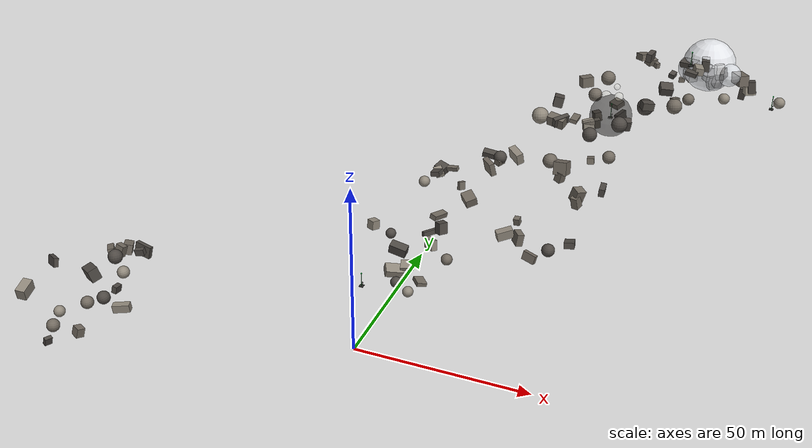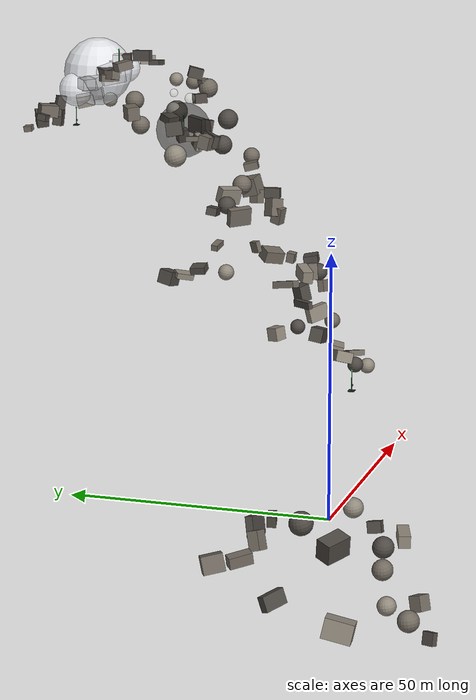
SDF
<sdf version="1.10">
 <world name="hiking_lora_world">
  <model name="node_ridge_mid">
   <static>true</static>
   <pose>4 -3 0 0 0 0</pose>
   <link name="tower">
    <visual name="foundation">
     <pose>0 0 23.7151 0 0 0</pose>
     <geometry><box><size>1.15 1.15 0.16</size></box></geometry>
     <material>
      <ambient>0.11199999999999999 0.11199999999999999 0.105 1</ambient>
      <diffuse>0.16 0.16 0.15 1</diffuse>
     </material>
    </visual>
    <visual name="mast">
     <pose>0 0 25.5951 0 0 0</pose>
     <geometry><cylinder><radius>0.075</radius><length>3.6</length></cylinder></geometry>
     <material><ambient>0.08399999999999999 0.294 0.126 1</ambient><diffuse>0.12 0.42 0.18 1</diffuse></material>
    </visual>
    <visual name="antenna">
     <pose>0 0 27.5151 0 0 0</pose>
     <geometry><sphere><radius>0.18</radius></sphere></geometry>
     <material><ambient>0.08399999999999999 0.595 0.238 1</ambient><diffuse>0.12 0.85 0.34 1</diffuse></material>
    </visual>
    <visual name="relay_box">
     <pose>0.24 0.0 24.6851 0 0 0</pose>
     <geometry><box><size>0.32 0.24 0.42</size></box></geometry>
     <material>
      <ambient>0.08399999999999999 0.091 0.08399999999999999 1</ambient>
      <diffuse>0.12 0.13 0.12 1</diffuse>
     </material>
    </visual>
   </link>
  </model>
  <model name="node_crater_edge">
   <static>true</static>
   <pose>54 45 0 0 0 0</pose>
   <link name="tower">
    <visual name="foundation">
     <pose>0 0 59.2618 0 0 0</pose>
     <geometry><box><size>1.15 1.15 0.16</size></box></geometry>
     <material>
      <ambient>0.11199999999999999 0.11199999999999999 0.105 1</ambient>
      <diffuse>0.16 0.16 0.15 1</diffuse>
     </material>
    </visual>
    <visual name="mast">
     <pose>0 0 61.1418 0 0 0</pose>
     <geometry><cylinder><radius>0.075</radius><length>3.6</length></cylinder></geometry>
     <material><ambient>0.08399999999999999 0.294 0.126 1</ambient><diffuse>0.12 0.42 0.18 1</diffuse></material>
    </visual>
    <visual name="antenna">
     <pose>0 0 63.0618 0 0 0</pose>
     <geometry><sphere><radius>0.18</radius></sphere></geometry>
     <material><ambient>0.08399999999999999 0.595 0.238 1</ambient><diffuse>0.12 0.85 0.34 1</diffuse></material>
    </visual>
    <visual name="relay_box">
     <pose>0.24 0.0 60.2318 0 0 0</pose>
     <geometry><box><size>0.32 0.24 0.42</size></box></geometry>
     <material>
      <ambient>0.08399999999999999 0.091 0.08399999999999999 1</ambient>
      <diffuse>0.12 0.13 0.12 1</diffuse>
     </material>
    </visual>
   </link>
  </model>
  <model name="node_north_saddle">
   <static>true</static>
   <pose>70 64 0 0 0 0</pose>
   <link name="tower">
    <visual name="foundation">
     <pose>0 0 68.7087 0 0 0</pose>
     <geometry><box><size>1.15 1.15 0.16</size></box></geometry>
     <material>
      <ambient>0.11199999999999999 0.11199999999999999 0.105 1</ambient>
      <diffuse>0.16 0.16 0.15 1</diffuse>
     </material>
    </visual>
    <visual name="mast">
     <pose>0 0 70.5887 0 0 0</pose>
     <geometry><cylinder><radius>0.075</radius><length>3.6</length></cylinder></geometry>
     <material><ambient>0.08399999999999999 0.294 0.126 1</ambient><diffuse>0.12 0.42 0.18 1</diffuse></material>
    </visual>
    <visual name="antenna">
     <pose>0 0 72.5087 0 0 0</pose>
     <geometry><sphere><radius>0.18</radius></sphere></geometry>
     <material><ambient>0.08399999999999999 0.595 0.238 1</ambient><diffuse>0.12 0.85 0.34 1</diffuse></material>
    </visual>
    <visual name="relay_box">
     <pose>0.24 0.0 69.6787 0 0 0</pose>
     <geometry><box><size>0.32 0.24 0.42</size></box></geometry>
     <material>
      <ambient>0.08399999999999999 0.091 0.08399999999999999 1</ambient>
      <diffuse>0.12 0.13 0.12 1</diffuse>
     </material>
    </visual>
   </link>
  </model>
  <model name="node_summit_view">
   <static>true</static>
   <pose>91 81 0 0 0 0</pose>
   <link name="tower">
    <visual name="foundation">
     <pose>0 0 52.0438 0 0 0</pose>
     <geometry><box><size>1.15 1.15 0.16</size></box></geometry>
     <material>
      <ambient>0.11199999999999999 0.11199999999999999 0.105 1</ambient>
      <diffuse>0.16 0.16 0.15 1</diffuse>
     </material>
    </visual>
    <visual name="mast">
     <pose>0 0 53.9238 0 0 0</pose>
     <geometry><cylinder><radius>0.075</radius><length>3.6</length></cylinder></geometry>
     <material><ambient>0.08399999999999999 0.294 0.126 1</ambient><diffuse>0.12 0.42 0.18 1</diffuse></material>
    </visual>
    <visual name="antenna">
     <pose>0 0 55.8438 0 0 0</pose>
     <geometry><sphere><radius>0.18</radius></sphere></geometry>
     <material><ambient>0.08399999999999999 0.595 0.238 1</ambient><diffuse>0.12 0.85 0.34 1</diffuse></material>
    </visual>
    <visual name="relay_box">
     <pose>0.24 0.0 53.0138 0 0 0</pose>
     <geometry><box><size>0.32 0.24 0.42</size></box></geometry>
     <material>
      <ambient>0.08399999999999999 0.091 0.08399999999999999 1</ambient>
      <diffuse>0.12 0.13 0.12 1</diffuse>
     </material>
    </visual>
   </link>
  </model>
  <model name="lower_cliff">
   <static>true</static>
   <link name="rocks">
    <visual name="rock_0">
     <pose>26.4599 30.2946 50.251 0.1639 0.1355 0.0783</pose>
     <geometry><box><size>3.7225 2.0019 1.4832</size></box></geometry>
     <material><ambient>0.21 0.196 0.182 1</ambient><diffuse>0.30 0.28 0.26 1</diffuse></material>
    </visual>
    <visual name="rock_1">
     <pose>18.5679 13.6922 38.9498 0.1407 0.1855 1.2184</pose>
     <geometry><box><size>4.7647 1.8848 1.2913</size></box></geometry>
     <material><ambient>0.308 0.287 0.259 1</ambient><diffuse>0.44 0.41 0.37 1</diffuse></material>
    </visual>
    <visual name="rock_2">
     <pose>16.6714 -2.6615 25.0825 -0.0014 -0.169 2.8398</pose>
     <geometry><sphere><radius>1.4154</radius></sphere></geometry>
     <material><ambient>0.392 0.371 0.33599999999999997 1</ambient><diffuse>0.56 0.53 0.48 1</diffuse></material>
    </visual>
    <visual name="rock_3">
     <pose>17.6646 10.0609 35.6615 0.1279 -0.0434 -2.1922</pose>
     <geometry><box><size>4.3301 0.945 1.335</size></box></geometry>
     <material><ambient>0.21 0.196 0.182 1</ambient><diffuse>0.30 0.28 0.26 1</diffuse></material>
    </visual>
    <visual name="rock_4">
     <pose>20.3307 11.0586 37.1358 0.0885 0.1977 2.4969</pose>
     <geometry><box><size>2.1908 2.4497 3.0679</size></box></geometry>
     <material><ambient>0.21 0.196 0.182 1</ambient><diffuse>0.30 0.28 0.26 1</diffuse></material>
    </visual>
    <visual name="rock_5">
     <pose>27.9138 25.6045 49.1457 0.217 -0.0398 -0.8468</pose>
     <geometry><box><size>4.3946 1.3625 3.3926</size></box></geometry>
     <material><ambient>0.308 0.287 0.259 1</ambient><diffuse>0.44 0.41 0.37 1</diffuse></material>
    </visual>
    <visual name="rock_6">
     <pose>12.2355 28.6709 42.3762 0.121 0.2123 -3.1238</pose>
     <geometry><box><size>2.43 2.8185 1.3291</size></box></geometry>
     <material><ambient>0.21 0.196 0.182 1</ambient><diffuse>0.30 0.28 0.26 1</diffuse></material>
    </visual>
    <visual name="rock_7">
     <pose>1.5618 10.6097 34.0694 0.0687 -0.1405 -2.0729</pose>
     <geometry><box><size>2.2771 2.3005 2.4025</size></box></geometry>
     <material><ambient>0.392 0.371 0.33599999999999997 1</ambient><diffuse>0.56 0.53 0.48 1</diffuse></material>
    </visual>
    <visual name="rock_8">
     <pose>23.7856 6.0261 31.3061 -0.1855 0.1862 -2.0482</pose>
     <geometry><sphere><radius>1.4898</radius></sphere></geometry>
     <material><ambient>0.308 0.287 0.259 1</ambient><diffuse>0.44 0.41 0.37 1</diffuse></material>
    </visual>
    <visual name="rock_9">
     <pose>11.3139 0.9781 27.9587 0.2739 0.203 0.5687</pose>
     <geometry><box><size>4.6454 3.104 1.9989</size></box></geometry>
     <material><ambient>0.392 0.371 0.33599999999999997 1</ambient><diffuse>0.56 0.53 0.48 1</diffuse></material>
    </visual>
    <visual name="rock_10">
     <pose>10.9438 23.0067 42.4112 0.171 0.1205 -0.1057</pose>
     <geometry><sphere><radius>1.47</radius></sphere></geometry>
     <material><ambient>0.392 0.371 0.33599999999999997 1</ambient><diffuse>0.56 0.53 0.48 1</diffuse></material>
    </visual>
    <visual name="rock_11">
     <pose>17.4605 26.7545 45.7948 -0.0907 0.1756 3.0376</pose>
     <geometry><box><size>2.9684 1.2924 1.0875</size></box></geometry>
     <material><ambient>0.308 0.287 0.259 1</ambient><diffuse>0.44 0.41 0.37 1</diffuse></material>
    </visual>
    <visual name="rock_12">
     <pose>25.1152 18.2824 42.8461 0.2536 0.1758 -0.8437</pose>
     <geometry><box><size>3.7759 2.9963 2.1935</size></box></geometry>
     <material><ambient>0.308 0.287 0.259 1</ambient><diffuse>0.44 0.41 0.37 1</diffuse></material>
    </visual>
    <visual name="rock_13">
     <pose>7.504 8.2368 33.9987 0.0192 -0.0986 1.6855</pose>
     <geometry><sphere><radius>1.369</radius></sphere></geometry>
     <material><ambient>0.21 0.196 0.182 1</ambient><diffuse>0.30 0.28 0.26 1</diffuse></material>
    </visual>
    <visual name="rock_14">
     <pose>29.8975 28.0302 49.9463 0.2552 -0.0347 1.1507</pose>
     <geometry><box><size>2.4255 1.6502 1.5744</size></box></geometry>
     <material><ambient>0.308 0.287 0.259 1</ambient><diffuse>0.44 0.41 0.37 1</diffuse></material>
    </visual>
    <visual name="rock_15">
     <pose>22.1154 20.5825 44.9025 -0.2011 0.1616 0.9759</pose>
     <geometry><box><size>1.8288 0.9582 2.1065</size></box></geometry>
     <material><ambient>0.308 0.287 0.259 1</ambient><diffuse>0.44 0.41 0.37 1</diffuse></material>
    </visual>
    <visual name="rock_16">
     <pose>11.5362 34.3045 40.5308 -0.1783 0.1573 -1.8748</pose>
     <geometry><box><size>2.887 2.9423 2.5772</size></box></geometry>
     <material><ambient>0.21 0.196 0.182 1</ambient><diffuse>0.30 0.28 0.26 1</diffuse></material>
    </visual>
    <visual name="rock_17">
     <pose>18.6888 0.4731 26.75 0.2403 -0.0494 2.29</pose>
     <geometry><box><size>3.2671 2.6148 1.053</size></box></geometry>
     <material><ambient>0.308 0.287 0.259 1</ambient><diffuse>0.44 0.41 0.37 1</diffuse></material>
    </visual>
    <visual name="rock_18">
     <pose>18.7315 7.6583 33.9413 -0.1044 -0.2016 -0.6982</pose>
     <geometry><box><size>3.9902 1.4817 2.7812</size></box></geometry>
     <material><ambient>0.392 0.371 0.33599999999999997 1</ambient><diffuse>0.56 0.53 0.48 1</diffuse></material>
    </visual>
    <visual name="rock_19">
     <pose>36.052 14.9193 36.8242 0.0254 -0.1936 0.5954</pose>
     <geometry><box><size>4.3108 2.0271 2.4471</size></box></geometry>
     <material><ambient>0.392 0.371 0.33599999999999997 1</ambient><diffuse>0.56 0.53 0.48 1</diffuse></material>
    </visual>
    <visual name="rock_20">
     <pose>11.8272 31.5459 41.087 0.1762 0.2098 -0.9096</pose>
     <geometry><box><size>3.3403 2.1896 1.0721</size></box></geometry>
     <material><ambient>0.392 0.371 0.33599999999999997 1</ambient><diffuse>0.56 0.53 0.48 1</diffuse></material>
    </visual>
    <visual name="rock_21">
     <pose>10.9129 5.1427 31.8876 0.1723 0.2101 0.0317</pose>
     <geometry><box><size>4.5379 2.3989 2.5917</size></box></geometry>
     <material><ambient>0.21 0.196 0.182 1</ambient><diffuse>0.30 0.28 0.26 1</diffuse></material>
    </visual>
    <visual name="rock_22">
     <pose>14.225 2.8053 29.0399 -0.266 0.0711 -2.8774</pose>
     <geometry><box><size>3.2955 2.914 1.09</size></box></geometry>
     <material><ambient>0.392 0.371 0.33599999999999997 1</ambient><diffuse>0.56 0.53 0.48 1</diffuse></material>
    </visual>
    <visual name="rock_23">
     <pose>12.8661 -1.3367 26.1846 -0.0642 -0.0058 0.8283</pose>
     <geometry><sphere><radius>1.4486</radius></sphere></geometry>
     <material><ambient>0.21 0.196 0.182 1</ambient><diffuse>0.30 0.28 0.26 1</diffuse></material>
    </visual>
   </link>
  </model>
  <model name="crater_rocks">
   <static>true</static>
   <link name="rocks">
    <visual name="rock_0">
     <pose>60.6923 55.8078 73.239 0.0743 0.0526 1.4517</pose>
     <geometry><box><size>3.6161 1.3966 2.1143</size></box></geometry>
     <material><ambient>0.21 0.196 0.182 1</ambient><diffuse>0.30 0.28 0.26 1</diffuse></material>
    </visual>
    <visual name="rock_1">
     <pose>50.9507 35.9598 58.0125 0.1819 0.204 3.0738</pose>
     <geometry><sphere><radius>1.8897</radius></sphere></geometry>
     <material><ambient>0.21 0.196 0.182 1</ambient><diffuse>0.30 0.28 0.26 1</diffuse></material>
    </visual>
    <visual name="rock_2">
     <pose>60.5552 62.8719 68.3767 0.0125 0.0528 -0.7827</pose>
     <geometry><box><size>4.0075 1.1086 1.3734</size></box></geometry>
     <material><ambient>0.308 0.287 0.259 1</ambient><diffuse>0.44 0.41 0.37 1</diffuse></material>
    </visual>
    <visual name="rock_3">
     <pose>63.1459 44.5306 64.6783 0.0457 -0.1369 -2.6264</pose>
     <geometry><box><size>3.0165 2.4609 1.9043</size></box></geometry>
     <material><ambient>0.21 0.196 0.182 1</ambient><diffuse>0.30 0.28 0.26 1</diffuse></material>
    </visual>
    <visual name="rock_4">
     <pose>50.5856 54.0669 65.979 -0.1681 0.0431 -1.3986</pose>
     <geometry><sphere><radius>1.8715</radius></sphere></geometry>
     <material><ambient>0.308 0.287 0.259 1</ambient><diffuse>0.44 0.41 0.37 1</diffuse></material>
    </visual>
    <visual name="rock_5">
     <pose>45.0991 52.9149 64.587 0.0939 0.0536 -2.5198</pose>
     <geometry><box><size>3.1125 2.4312 2.7079</size></box></geometry>
     <material><ambient>0.308 0.287 0.259 1</ambient><diffuse>0.44 0.41 0.37 1</diffuse></material>
    </visual>
    <visual name="rock_6">
     <pose>72.5865 48.8587 66.1558 0.0007 -0.2027 0.6777</pose>
     <geometry><sphere><radius>1.488</radius></sphere></geometry>
     <material><ambient>0.308 0.287 0.259 1</ambient><diffuse>0.44 0.41 0.37 1</diffuse></material>
    </visual>
    <visual name="rock_7">
     <pose>69.7399 45.7046 66.3755 0.2209 -0.0572 -2.2937</pose>
     <geometry><box><size>1.8308 1.6106 2.1261</size></box></geometry>
     <material><ambient>0.308 0.287 0.259 1</ambient><diffuse>0.44 0.41 0.37 1</diffuse></material>
    </visual>
    <visual name="rock_8">
     <pose>50.6412 44.1851 59.5279 -0.1539 0.133 2.1582</pose>
     <geometry><box><size>2.1565 1.8268 2.3901</size></box></geometry>
     <material><ambient>0.308 0.287 0.259 1</ambient><diffuse>0.44 0.41 0.37 1</diffuse></material>
    </visual>
    <visual name="rock_9">
     <pose>56.9746 43.2271 60.4283 0.1383 0.1141 -1.9585</pose>
     <geometry><box><size>3.5372 1.085 3.3291</size></box></geometry>
     <material><ambient>0.21 0.196 0.182 1</ambient><diffuse>0.30 0.28 0.26 1</diffuse></material>
    </visual>
    <visual name="rock_10">
     <pose>40.5671 42.5686 62.7248 -0.1945 -0.1525 -1.3322</pose>
     <geometry><box><size>3.2199 2.4622 2.7255</size></box></geometry>
     <material><ambient>0.21 0.196 0.182 1</ambient><diffuse>0.30 0.28 0.26 1</diffuse></material>
    </visual>
    <visual name="rock_11">
     <pose>59.1097 41.6065 59.8513 -0.1737 -0.1013 -2.7724</pose>
     <geometry><box><size>1.7367 2.077 2.7306</size></box></geometry>
     <material><ambient>0.21 0.196 0.182 1</ambient><diffuse>0.30 0.28 0.26 1</diffuse></material>
    </visual>
    <visual name="rock_12">
     <pose>45.9778 39.6429 59.9265 -0.1497 -0.0622 -1.5681</pose>
     <geometry><box><size>4.2625 1.8188 0.9876</size></box></geometry>
     <material><ambient>0.308 0.287 0.259 1</ambient><diffuse>0.44 0.41 0.37 1</diffuse></material>
    </visual>
    <visual name="rock_13">
     <pose>52.9874 30.6549 53.7364 -0.2573 -0.065 0.2045</pose>
     <geometry><box><size>1.7741 2.8027 1.477</size></box></geometry>
     <material><ambient>0.308 0.287 0.259 1</ambient><diffuse>0.44 0.41 0.37 1</diffuse></material>
    </visual>
    <visual name="rock_14">
     <pose>67.0348 46.6007 69.134 -0.2695 -0.097 -2.7919</pose>
     <geometry><box><size>3.1747 2.8876 2.092</size></box></geometry>
     <material><ambient>0.21 0.196 0.182 1</ambient><diffuse>0.30 0.28 0.26 1</diffuse></material>
    </visual>
    <visual name="rock_15">
     <pose>36.3519 41.0458 58.3226 0.2446 0.1293 -3.0709</pose>
     <geometry><sphere><radius>2.168</radius></sphere></geometry>
     <material><ambient>0.392 0.371 0.33599999999999997 1</ambient><diffuse>0.56 0.53 0.48 1</diffuse></material>
    </visual>
    <visual name="rock_16">
     <pose>54.6991 48.1484 61.9698 0.2657 0.0002 -0.5495</pose>
     <geometry><box><size>2.8165 2.6216 1.3923</size></box></geometry>
     <material><ambient>0.308 0.287 0.259 1</ambient><diffuse>0.44 0.41 0.37 1</diffuse></material>
    </visual>
    <visual name="rock_17">
     <pose>69.8967 44.8184 65.6121 -0.0771 -0.1836 -0.5933</pose>
     <geometry><sphere><radius>1.9495</radius></sphere></geometry>
     <material><ambient>0.308 0.287 0.259 1</ambient><diffuse>0.44 0.41 0.37 1</diffuse></material>
    </visual>
    <visual name="rock_18">
     <pose>46.2228 28.5808 51.2202 0.2546 0.1123 3.0429</pose>
     <geometry><box><size>3.5052 3.1866 3.3616</size></box></geometry>
     <material><ambient>0.308 0.287 0.259 1</ambient><diffuse>0.44 0.41 0.37 1</diffuse></material>
    </visual>
    <visual name="rock_19">
     <pose>58.3913 59.1951 71.3825 -0.1898 0.0714 0.7138</pose>
     <geometry><box><size>2.7963 3.18 1.6995</size></box></geometry>
     <material><ambient>0.308 0.287 0.259 1</ambient><diffuse>0.44 0.41 0.37 1</diffuse></material>
    </visual>
    <visual name="rock_20">
     <pose>57.2676 27.8125 47.5287 -0.0683 -0.0046 -1.4735</pose>
     <geometry><box><size>3.7777 1.4818 2.0613</size></box></geometry>
     <material><ambient>0.21 0.196 0.182 1</ambient><diffuse>0.30 0.28 0.26 1</diffuse></material>
    </visual>
    <visual name="rock_21">
     <pose>59.8698 62.0867 69.061 -0.202 -0.1237 -2.1456</pose>
     <geometry><box><size>2.6764 1.9127 1.7152</size></box></geometry>
     <material><ambient>0.308 0.287 0.259 1</ambient><diffuse>0.44 0.41 0.37 1</diffuse></material>
    </visual>
   </link>
  </model>
  <model name="summit_boulders">
   <static>true</static>
   <link name="rocks">
    <visual name="rock_0">
     <pose>77.1355 72.6827 63.8954 0.2787 -0.1334 -1.7136</pose>
     <geometry><box><size>3.8252 2.2374 2.4564</size></box></geometry>
     <material><ambient>0.21 0.196 0.182 1</ambient><diffuse>0.30 0.28 0.26 1</diffuse></material>
    </visual>
    <visual name="rock_1">
     <pose>73.8049 72.4542 64.3993 -0.0216 -0.0486 0.8072</pose>
     <geometry><box><size>2.7965 2.8006 2.2496</size></box></geometry>
     <material><ambient>0.21 0.196 0.182 1</ambient><diffuse>0.30 0.28 0.26 1</diffuse></material>
    </visual>
    <visual name="rock_2">
     <pose>77.0619 67.3058 67.535 0.1312 -0.0181 -2.3567</pose>
     <geometry><box><size>2.3977 1.1405 2.671</size></box></geometry>
     <material><ambient>0.308 0.287 0.259 1</ambient><diffuse>0.44 0.41 0.37 1</diffuse></material>
    </visual>
    <visual name="rock_3">
     <pose>69.4208 66.139 68.3132 -0.2073 0.1108 2.7344</pose>
     <geometry><box><size>4.4705 2.6158 1.5715</size></box></geometry>
     <material><ambient>0.21 0.196 0.182 1</ambient><diffuse>0.30 0.28 0.26 1</diffuse></material>
    </visual>
    <visual name="rock_4">
     <pose>75.6134 80.0624 58.1282 -0.158 0.082 -1.0361</pose>
     <geometry><box><size>2.2244 2.0444 2.8252</size></box></geometry>
     <material><ambient>0.21 0.196 0.182 1</ambient><diffuse>0.30 0.28 0.26 1</diffuse></material>
    </visual>
    <visual name="rock_5">
     <pose>72.6493 77.8296 60.3597 -0.0483 -0.1658 2.3911</pose>
     <geometry><box><size>1.9936 1.0328 2.7801</size></box></geometry>
     <material><ambient>0.21 0.196 0.182 1</ambient><diffuse>0.30 0.28 0.26 1</diffuse></material>
    </visual>
    <visual name="rock_6">
     <pose>93.1886 74.0309 57.5429 0.2588 -0.0555 0.8559</pose>
     <geometry><sphere><radius>1.5166</radius></sphere></geometry>
     <material><ambient>0.392 0.371 0.33599999999999997 1</ambient><diffuse>0.56 0.53 0.48 1</diffuse></material>
    </visual>
    <visual name="rock_7">
     <pose>68.2197 78.9358 59.3861 -0.0341 -0.1177 2.2131</pose>
     <geometry><box><size>3.7678 2.5537 2.4828</size></box></geometry>
     <material><ambient>0.308 0.287 0.259 1</ambient><diffuse>0.44 0.41 0.37 1</diffuse></material>
    </visual>
    <visual name="rock_8">
     <pose>80.6416 55.1081 65.0375 -0.2725 -0.1007 1.2087</pose>
     <geometry><sphere><radius>1.4141</radius></sphere></geometry>
     <material><ambient>0.392 0.371 0.33599999999999997 1</ambient><diffuse>0.56 0.53 0.48 1</diffuse></material>
    </visual>
    <visual name="rock_9">
     <pose>85.424 74.316 60.7707 -0.1562 -0.1708 0.2165</pose>
     <geometry><box><size>2.0309 2.3356 3.1878</size></box></geometry>
     <material><ambient>0.21 0.196 0.182 1</ambient><diffuse>0.30 0.28 0.26 1</diffuse></material>
    </visual>
    <visual name="rock_10">
     <pose>73.6488 67.4517 67.4527 -0.2699 0.1232 -1.762</pose>
     <geometry><box><size>1.9338 2.511 1.4622</size></box></geometry>
     <material><ambient>0.21 0.196 0.182 1</ambient><diffuse>0.30 0.28 0.26 1</diffuse></material>
    </visual>
    <visual name="rock_11">
     <pose>84.6825 76.6189 58.7535 0.0916 -0.216 -1.2403</pose>
     <geometry><box><size>3.5186 2.7816 2.3051</size></box></geometry>
     <material><ambient>0.392 0.371 0.33599999999999997 1</ambient><diffuse>0.56 0.53 0.48 1</diffuse></material>
    </visual>
    <visual name="rock_12">
     <pose>71.4759 56.3792 70.0348 -0.0537 0.1349 -0.1121</pose>
     <geometry><box><size>2.9621 2.2272 1.0253</size></box></geometry>
     <material><ambient>0.21 0.196 0.182 1</ambient><diffuse>0.30 0.28 0.26 1</diffuse></material>
    </visual>
    <visual name="rock_13">
     <pose>82.548 69.7267 64.6355 0.0172 -0.1478 -0.9999</pose>
     <geometry><box><size>4.8765 2.6853 2.8432</size></box></geometry>
     <material><ambient>0.308 0.287 0.259 1</ambient><diffuse>0.44 0.41 0.37 1</diffuse></material>
    </visual>
    <visual name="rock_14">
     <pose>65.6301 82.3236 55.9268 -0.0981 0.1289 1.5925</pose>
     <geometry><box><size>1.687 1.5607 1.1442</size></box></geometry>
     <material><ambient>0.308 0.287 0.259 1</ambient><diffuse>0.44 0.41 0.37 1</diffuse></material>
    </visual>
    <visual name="rock_15">
     <pose>73.7422 82.4107 56.6409 -0.2525 0.1081 2.0571</pose>
     <geometry><box><size>2.4439 2.4575 3.3477</size></box></geometry>
     <material><ambient>0.21 0.196 0.182 1</ambient><diffuse>0.30 0.28 0.26 1</diffuse></material>
    </visual>
    <visual name="rock_16">
     <pose>72.8211 58.7125 70.2569 -0.1689 -0.0025 -1.2283</pose>
     <geometry><box><size>3.1576 2.1797 1.8823</size></box></geometry>
     <material><ambient>0.392 0.371 0.33599999999999997 1</ambient><diffuse>0.56 0.53 0.48 1</diffuse></material>
    </visual>
    <visual name="rock_17">
     <pose>63.5047 78.2851 58.8182 -0.1581 -0.1472 2.9135</pose>
     <geometry><box><size>1.5655 2.0563 1.3394</size></box></geometry>
     <material><ambient>0.21 0.196 0.182 1</ambient><diffuse>0.30 0.28 0.26 1</diffuse></material>
    </visual>
    <visual name="rock_18">
     <pose>73.6973 64.5052 69.5626 0.0159 -0.0548 -1.3817</pose>
     <geometry><box><size>3.7771 1.9356 2.8883</size></box></geometry>
     <material><ambient>0.21 0.196 0.182 1</ambient><diffuse>0.30 0.28 0.26 1</diffuse></material>
    </visual>
    <visual name="rock_19">
     <pose>82.5537 81.9356 55.1588 0.0851 -0.0934 1.571</pose>
     <geometry><box><size>2.0016 1.7462 3.3372</size></box></geometry>
     <material><ambient>0.21 0.196 0.182 1</ambient><diffuse>0.30 0.28 0.26 1</diffuse></material>
    </visual>
   </link>
  </model>
  <model name="western_scree">
   <static>true</static>
   <link name="rocks">
    <visual name="rock_0">
     <pose>-60.4512 -25.1784 17.1261 0.2668 -0.1464 -0.657</pose>
     <geometry><sphere><radius>1.7977</radius></sphere></geometry>
     <material><ambient>0.21 0.196 0.182 1</ambient><diffuse>0.30 0.28 0.26 1</diffuse></material>
    </visual>
    <visual name="rock_1">
     <pose>-69.9975 0.6079 14.9503 0.2084 0.1732 2.0318</pose>
     <geometry><box><size>3.6438 2.6109 3.0328</size></box></geometry>
     <material><ambient>0.308 0.287 0.259 1</ambient><diffuse>0.44 0.41 0.37 1</diffuse></material>
    </visual>
    <visual name="rock_2">
     <pose>-72.509 -32.3626 9.5967 0.0919 -0.0903 -2.328</pose>
     <geometry><sphere><radius>1.8083</radius></sphere></geometry>
     <material><ambient>0.308 0.287 0.259 1</ambient><diffuse>0.44 0.41 0.37 1</diffuse></material>
    </visual>
    <visual name="rock_3">
     <pose>-72.1893 -35.7517 6.98 -0.2383 -0.0758 -2.0319</pose>
     <geometry><box><size>2.0808 1.1552 2.1781</size></box></geometry>
     <material><ambient>0.21 0.196 0.182 1</ambient><diffuse>0.30 0.28 0.26 1</diffuse></material>
    </visual>
    <visual name="rock_4">
     <pose>-71.979 -4.5526 16.8438 0.128 -0.169 -0.9492</pose>
     <geometry><box><size>3.9917 1.8509 1.9577</size></box></geometry>
     <material><ambient>0.308 0.287 0.259 1</ambient><diffuse>0.44 0.41 0.37 1</diffuse></material>
    </visual>
    <visual name="rock_5">
     <pose>-57.4398 -19.3736 22.3128 0.1939 -0.1606 -0.9739</pose>
     <geometry><sphere><radius>1.6856</radius></sphere></geometry>
     <material><ambient>0.392 0.371 0.33599999999999997 1</ambient><diffuse>0.56 0.53 0.48 1</diffuse></material>
    </visual>
    <visual name="rock_6">
     <pose>-64.6277 -12.6109 21.2695 -0.2558 0.1272 1.2146</pose>
     <geometry><sphere><radius>2.0267</radius></sphere></geometry>
     <material><ambient>0.21 0.196 0.182 1</ambient><diffuse>0.30 0.28 0.26 1</diffuse></material>
    </visual>
    <visual name="rock_7">
     <pose>-65.1338 -26.2642 14.992 0.1943 0.0535 -2.0803</pose>
     <geometry><sphere><radius>1.7419</radius></sphere></geometry>
     <material><ambient>0.308 0.287 0.259 1</ambient><diffuse>0.44 0.41 0.37 1</diffuse></material>
    </visual>
    <visual name="rock_8">
     <pose>-57.4932 -23.0597 19.4439 0.1633 0.1562 1.546</pose>
     <geometry><box><size>2.3847 1.3982 1.9695</size></box></geometry>
     <material><ambient>0.21 0.196 0.182 1</ambient><diffuse>0.30 0.28 0.26 1</diffuse></material>
    </visual>
    <visual name="rock_9">
     <pose>-67.558 -6.1066 18.6997 0.2777 -0.1831 2.919</pose>
     <geometry><box><size>2.5648 1.8967 3.2611</size></box></geometry>
     <material><ambient>0.308 0.287 0.259 1</ambient><diffuse>0.44 0.41 0.37 1</diffuse></material>
    </visual>
    <visual name="rock_10">
     <pose>-84.955 -13.7509 15.4573 0.2698 0.1674 2.5861</pose>
     <geometry><box><size>4.2457 1.3298 2.5628</size></box></geometry>
     <material><ambient>0.21 0.196 0.182 1</ambient><diffuse>0.30 0.28 0.26 1</diffuse></material>
    </visual>
    <visual name="rock_11">
     <pose>-86.7712 -24.821 12.5184 0.0651 -0.2161 1.6741</pose>
     <geometry><box><size>4.7649 2.7795 3.3554</size></box></geometry>
     <material><ambient>0.392 0.371 0.33599999999999997 1</ambient><diffuse>0.56 0.53 0.48 1</diffuse></material>
    </visual>
    <visual name="rock_12">
     <pose>-68.1618 -18.9024 19.0725 0.2572 -0.1804 -0.5814</pose>
     <geometry><box><size>4.6071 2.9045 3.5627</size></box></geometry>
     <material><ambient>0.21 0.196 0.182 1</ambient><diffuse>0.30 0.28 0.26 1</diffuse></material>
    </visual>
    <visual name="rock_13">
     <pose>-64.5356 -32.2631 9.8675 0.2644 -0.0872 2.684</pose>
     <geometry><box><size>2.4284 2.2011 2.6263</size></box></geometry>
     <material><ambient>0.308 0.287 0.259 1</ambient><diffuse>0.44 0.41 0.37 1</diffuse></material>
    </visual>
    <visual name="rock_14">
     <pose>-60.7507 -6.6544 20.1979 0.0209 -0.1689 0.2089</pose>
     <geometry><box><size>2.5972 1.5019 1.8516</size></box></geometry>
     <material><ambient>0.21 0.196 0.182 1</ambient><diffuse>0.30 0.28 0.26 1</diffuse></material>
    </visual>
    <visual name="rock_15">
     <pose>-53.7194 -26.8852 16.9442 0.0087 -0.1137 0.3224</pose>
     <geometry><box><size>4.6097 1.9582 2.1762</size></box></geometry>
     <material><ambient>0.392 0.371 0.33599999999999997 1</ambient><diffuse>0.56 0.53 0.48 1</diffuse></material>
    </visual>
    <visual name="rock_16">
     <pose>-72.6241 -28.849 11.7939 0.1414 0.0584 2.6885</pose>
     <geometry><sphere><radius>1.5596</radius></sphere></geometry>
     <material><ambient>0.392 0.371 0.33599999999999997 1</ambient><diffuse>0.56 0.53 0.48 1</diffuse></material>
    </visual>
    <visual name="rock_17">
     <pose>-61.3951 -4.0406 19.1076 -0.1761 0.1463 -0.1191</pose>
     <geometry><box><size>4.8587 1.2804 3.4482</size></box></geometry>
     <material><ambient>0.21 0.196 0.182 1</ambient><diffuse>0.30 0.28 0.26 1</diffuse></material>
    </visual>
   </link>
  </model>
  <model name="ridge_talus">
   <static>true</static>
   <link name="rocks">
    <visual name="rock_0">
     <pose>42.0752 36.1115 60.2571 -0.2152 -0.091 2.9413</pose>
     <geometry><box><size>4.5292 2.3796 2.5976</size></box></geometry>
     <material><ambient>0.308 0.287 0.259 1</ambient><diffuse>0.44 0.41 0.37 1</diffuse></material>
    </visual>
    <visual name="rock_1">
     <pose>42.8127 29.4842 52.0283 0.0768 0.0618 1.2475</pose>
     <geometry><sphere><radius>1.8845</radius></sphere></geometry>
     <material><ambient>0.308 0.287 0.259 1</ambient><diffuse>0.44 0.41 0.37 1</diffuse></material>
    </visual>
    <visual name="rock_2">
     <pose>38.2803 18.1734 39.3759 -0.1697 0.0751 3.0937</pose>
     <geometry><box><size>1.5534 1.5713 1.9176</size></box></geometry>
     <material><ambient>0.308 0.287 0.259 1</ambient><diffuse>0.44 0.41 0.37 1</diffuse></material>
    </visual>
    <visual name="rock_3">
     <pose>29.7623 28.6421 50.7552 -0.0705 -0.0699 -0.4535</pose>
     <geometry><sphere><radius>1.6916</radius></sphere></geometry>
     <material><ambient>0.21 0.196 0.182 1</ambient><diffuse>0.30 0.28 0.26 1</diffuse></material>
    </visual>
    <visual name="rock_4">
     <pose>50.0716 40.8123 58.5614 0.2278 -0.1447 0.5104</pose>
     <geometry><box><size>4.5229 1.1376 2.669</size></box></geometry>
     <material><ambient>0.392 0.371 0.33599999999999997 1</ambient><diffuse>0.56 0.53 0.48 1</diffuse></material>
    </visual>
    <visual name="rock_5">
     <pose>39.6339 15.0806 36.3811 -0.0106 0.1581 0.6345</pose>
     <geometry><box><size>1.7956 3.1003 3.1895</size></box></geometry>
     <material><ambient>0.308 0.287 0.259 1</ambient><diffuse>0.44 0.41 0.37 1</diffuse></material>
    </visual>
    <visual name="rock_6">
     <pose>51.5198 25.5781 45.9161 -0.1982 0.192 -0.7537</pose>
     <geometry><box><size>2.5592 2.7069 3.55</size></box></geometry>
     <material><ambient>0.308 0.287 0.259 1</ambient><diffuse>0.44 0.41 0.37 1</diffuse></material>
    </visual>
    <visual name="rock_7">
     <pose>49.3663 40.2941 58.7072 0.0809 0.1448 -2.5178</pose>
     <geometry><box><size>2.8413 1.1718 2.7083</size></box></geometry>
     <material><ambient>0.392 0.371 0.33599999999999997 1</ambient><diffuse>0.56 0.53 0.48 1</diffuse></material>
    </visual>
    <visual name="rock_8">
     <pose>57.2433 31.8714 54.8342 0.129 -0.0998 1.9596</pose>
     <geometry><sphere><radius>1.6342</radius></sphere></geometry>
     <material><ambient>0.308 0.287 0.259 1</ambient><diffuse>0.44 0.41 0.37 1</diffuse></material>
    </visual>
    <visual name="rock_9">
     <pose>43.5403 12.7816 32.8708 -0.2303 0.1509 -0.2746</pose>
     <geometry><box><size>3.5156 1.2381 2.2943</size></box></geometry>
     <material><ambient>0.308 0.287 0.259 1</ambient><diffuse>0.44 0.41 0.37 1</diffuse></material>
    </visual>
    <visual name="rock_10">
     <pose>47.6269 15.2204 34.4851 0.0808 -0.1962 1.8475</pose>
     <geometry><sphere><radius>1.7173</radius></sphere></geometry>
     <material><ambient>0.21 0.196 0.182 1</ambient><diffuse>0.30 0.28 0.26 1</diffuse></material>
    </visual>
    <visual name="rock_11">
     <pose>33.7856 29.4458 51.8062 0.2374 0.1222 -0.7532</pose>
     <geometry><box><size>4.2829 1.8814 3.0085</size></box></geometry>
     <material><ambient>0.392 0.371 0.33599999999999997 1</ambient><diffuse>0.56 0.53 0.48 1</diffuse></material>
    </visual>
    <visual name="rock_12">
     <pose>52.3366 18.0121 35.8848 0.1816 0.0811 -2.9773</pose>
     <geometry><box><size>2.5957 2.8345 1.6674</size></box></geometry>
     <material><ambient>0.21 0.196 0.182 1</ambient><diffuse>0.30 0.28 0.26 1</diffuse></material>
    </visual>
    <visual name="rock_13">
     <pose>46.1959 27.5093 49.16 -0.1011 0.1512 -0.4813</pose>
     <geometry><box><size>1.911 2.0454 2.6651</size></box></geometry>
     <material><ambient>0.308 0.287 0.259 1</ambient><diffuse>0.44 0.41 0.37 1</diffuse></material>
    </visual>
    <visual name="rock_14">
     <pose>43.1497 36.0701 60.5458 0.2407 -0.1315 0.809</pose>
     <geometry><box><size>4.2386 1.221 2.376</size></box></geometry>
     <material><ambient>0.21 0.196 0.182 1</ambient><diffuse>0.30 0.28 0.26 1</diffuse></material>
    </visual>
    <visual name="rock_15">
     <pose>51.5475 24.6535 44.4401 -0.2313 0.0519 2.8083</pose>
     <geometry><box><size>1.8719 2.0873 3.3309</size></box></geometry>
     <material><ambient>0.308 0.287 0.259 1</ambient><diffuse>0.44 0.41 0.37 1</diffuse></material>
    </visual>
   </link>
  </model>
  <model name="crater_smoke_marker">
   <static>true</static>
   <pose>54 45 0 0 0 0</pose>
   <link name="crater_marker">
    <visual name="bowl_shadow">
     <pose>0 0 59.8818 0 0 0</pose>
     <geometry><sphere><radius>5.5</radius></sphere></geometry>
     <material>
      <ambient>0.06999999999999999 0.063 0.055999999999999994 0.5</ambient>
      <diffuse>0.10 0.09 0.08 0.5</diffuse>
     </material>
    </visual>
    <visual name="rim_rock_0">
     <pose>8.0 4.0 61.9818 0 0 0</pose>
     <geometry><sphere><radius>2.2</radius></sphere></geometry>
     <material><ambient>0.21 0.196 0.182 1</ambient><diffuse>0.30 0.28 0.26 1</diffuse></material>
    </visual>
    <visual name="rim_rock_1">
     <pose>-6.0 7.0 61.5818 0 0 0</pose>
     <geometry><sphere><radius>1.8</radius></sphere></geometry>
     <material><ambient>0.308 0.287 0.259 1</ambient><diffuse>0.44 0.41 0.37 1</diffuse></material>
    </visual>
    <visual name="rim_rock_2">
     <pose>4.0 -8.0 61.7818 0 0 0</pose>
     <geometry><sphere><radius>2</radius></sphere></geometry>
     <material><ambient>0.21 0.196 0.182 1</ambient><diffuse>0.30 0.28 0.26 1</diffuse></material>
    </visual>
    <visual name="steam_0">
     <pose>-2.0  1.5 64.3818 0 0 0</pose>
     <geometry><sphere><radius>1.4</radius></sphere></geometry>
     <material>
      <ambient>0.5599999999999999 0.5599999999999999 0.5319999999999999 0.32</ambient>
      <diffuse>0.80 0.80 0.76 0.32</diffuse>
     </material>
    </visual>
    <visual name="steam_1">
     <pose>1.8 -0.8 65.9818 0 0 0</pose>
     <geometry><sphere><radius>1.1</radius></sphere></geometry>
     <material><ambient>0.616 0.616 0.574 0.26</ambient><diffuse>0.88 0.88 0.82 0.26</diffuse></material>
    </visual>
    <visual name="steam_2">
     <pose>0.5  2.2 67.1818 0 0 0</pose>
     <geometry><sphere><radius>0.8</radius></sphere></geometry>
     <material><ambient>0.644 0.644 0.616 0.2</ambient><diffuse>0.92 0.92 0.88 0.2</diffuse></material>
    </visual>
   </link>
  </model>
  <model name="summit_snow">
   <static>true</static>
   <link name="snow">
    <visual name="snow_main">
     <pose>74 70 67.1009 0 0 0</pose>
     <geometry><sphere><radius>7</radius></sphere></geometry>
     <material>
      <ambient>0.6649999999999999 0.6719999999999999 0.6859999999999999 0.8</ambient>
      <diffuse>0.95 0.96 0.98 0.8</diffuse>
     </material>
    </visual>
    <visual name="snow_patch0">
     <pose>69 73 64.1001 0 0 0</pose>
     <geometry><sphere><radius>3.5</radius></sphere></geometry>
     <material>
      <ambient>0.644 0.651 0.6719999999999999 0.65</ambient>
      <diffuse>0.92 0.93 0.96 0.65</diffuse>
     </material>
    </visual>
    <visual name="snow_patch1">
     <pose>80 66 66.9218 0 0 0</pose>
     <geometry><sphere><radius>3</radius></sphere></geometry>
     <material><ambient>0.63 0.644 0.6649999999999999 0.6</ambient><diffuse>0.90 0.92 0.95 0.6</diffuse></material>
    </visual>
   </link>
  </model>
 </world>
</sdf>
